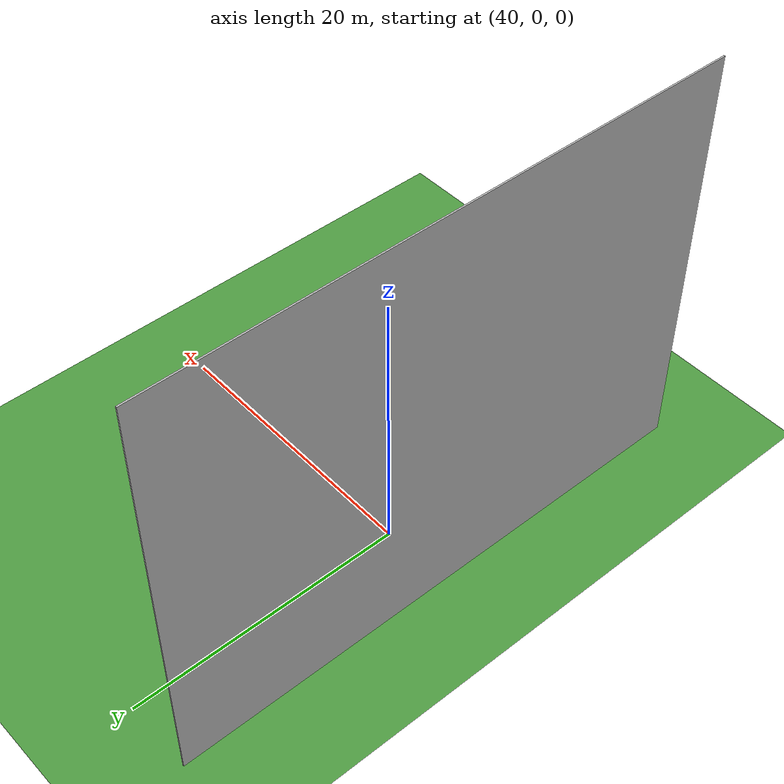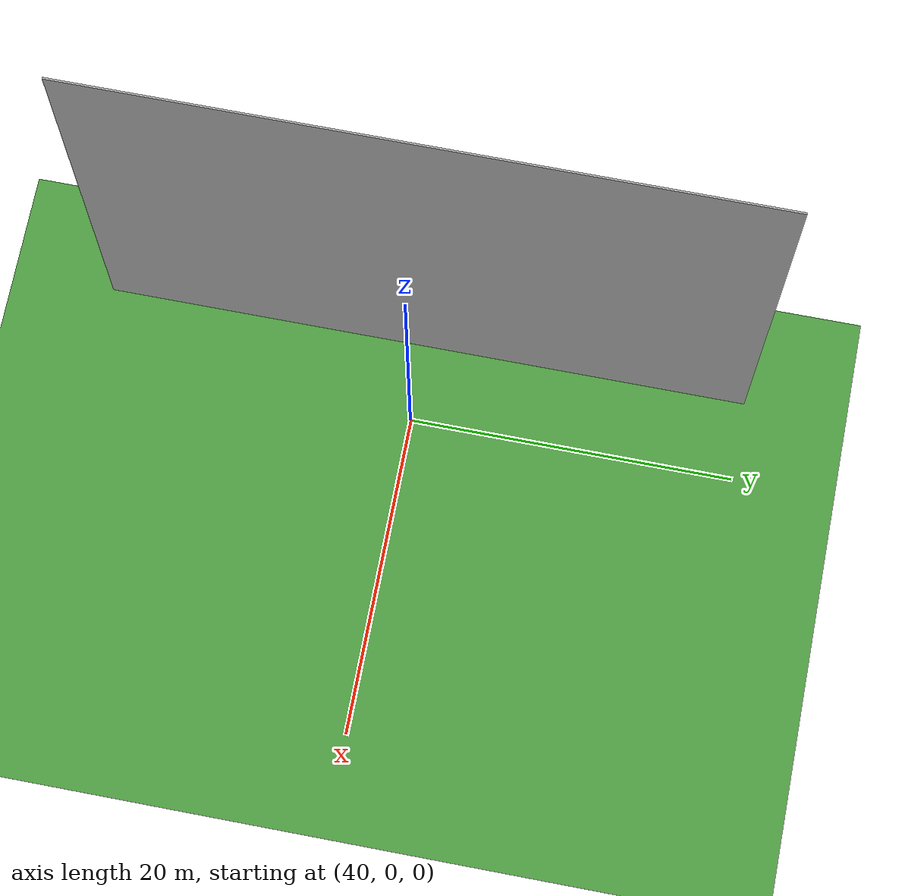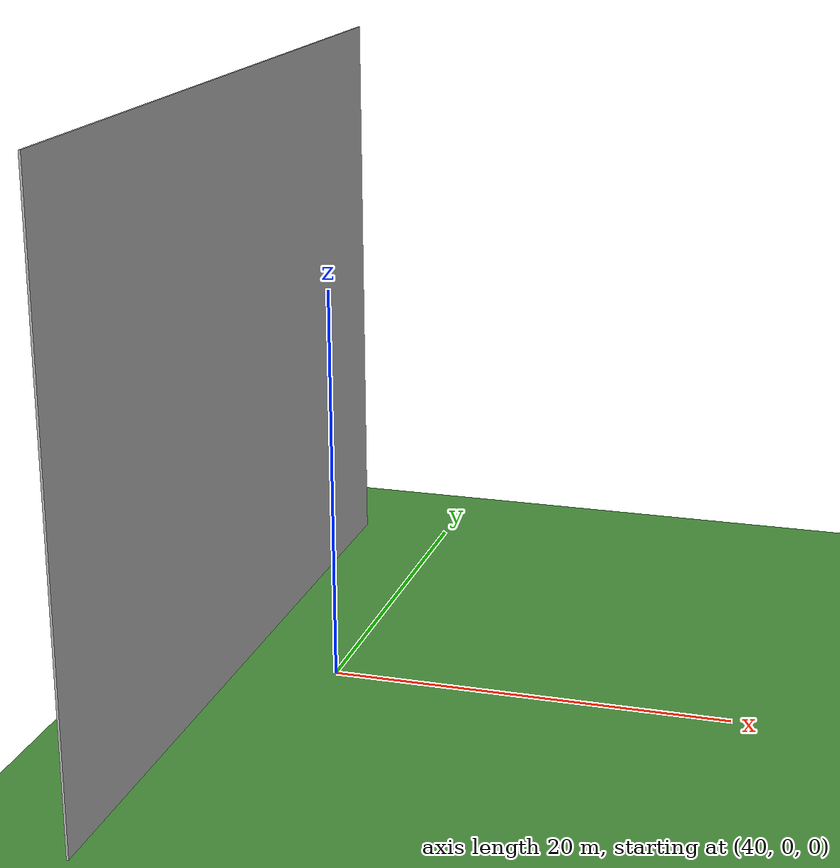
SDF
<sdf version="1.6">
 <world name="default">
  <plugin name="mrs_gazebo_static_transform_republisher_plugin" filename="libmrs_gazebo_static_transform_republisher.so"/>
  <spherical_coordinates>
   <surface_model>EARTH_WGS84</surface_model>
   <latitude_deg>37.4118</latitude_deg>
   <longitude_deg>-121.996</longitude_deg>
   <elevation>0</elevation>
   <heading_deg>0</heading_deg>
  </spherical_coordinates>
  <physics name="default_physics" default="0" type="ode">
   <ode>
    <solver>
     <type>quick</type>
     <iters>50</iters>
     <sor>1</sor>
     <use_dynamic_moi_rescaling>0</use_dynamic_moi_rescaling>
    </solver>
    <constraints>
     <cfm>0</cfm>
     <erp>0.2</erp>
     <contact_max_correcting_vel>1000</contact_max_correcting_vel>
     <contact_surface_layer>0.001</contact_surface_layer>
    </constraints>
   </ode>
   <max_step_size>0.002</max_step_size>
   <real_time_factor>1</real_time_factor>
   <real_time_update_rate>500</real_time_update_rate>
  </physics>
  <scene><shadows>0</shadows><ambient>0.4 0.4 0.4 1</ambient><background>0.7 0.7 0.7 1</background></scene>
  <light name="sun" type="directional">
   <pose>250 250 600 0 -0 0</pose>
   <diffuse>0.8 0.8 0.8 1</diffuse>
   <specular>0.2 0.2 0.2 1</specular>
   <attenuation>
    <range>1000</range>
    <constant>0.9</constant>
    <linear>0.01</linear>
    <quadratic>0.001</quadratic>
   </attenuation>
   <direction>0 0 -1</direction>
  </light>
  <model name="ground_plane">
   <static>1</static>
   <link name="link">
    <collision name="collision">
     <geometry><plane><normal>0 0 1</normal><size>250 250</size></plane></geometry>
     <surface><friction><ode><mu>1</mu><mu2>1</mu2></ode></friction></surface>
    </collision>
    <visual name="grass">
     <cast_shadows>0</cast_shadows>
     <geometry><plane><normal>0 0 1</normal><size>150 250</size></plane></geometry>
     <material>
      <script><uri>file://media/materials/scripts/Gazebo.material</uri><name>Gazebo/Grass</name></script>
     </material>
    </visual>
   </link>
  </model>
  <gravity>0 0 -9.8066</gravity>
  <magnetic_field>6e-06 2.3e-05 -4.2e-05</magnetic_field>
  <atmosphere type="adiabatic"/>
  <model name="forest_background">
   <static>1</static>
   <link name="link">
    <inertial>
     <mass>666</mass>
     <inertia>
      <ixx>0.0861167</ixx>
      <ixy>0</ixy>
      <ixz>0</ixz>
      <iyy>0.0861167</iyy>
      <iyz>0</iyz>
      <izz>0.0861167</izz>
     </inertia>
    </inertial>
    <visual name="forest_plane">
     <pose>0 0 15 0 -0 0</pose>
     <geometry><box><size>40 0.1 30</size></box></geometry>
     <material>
      <script>
       <uri>model://forest_background/scripts</uri>
       <uri>model://forest_background/materials/textures</uri>
       <name>ForestBackground/ForestTexture</name>
      </script>
     </material>
    </visual>
   </link>
   <pose>35 0 0 0 -0 1.57</pose>
  </model>
 </world>
</sdf>
